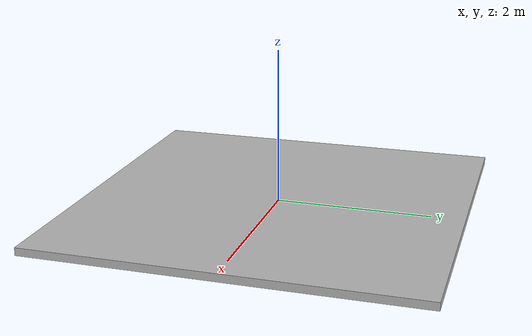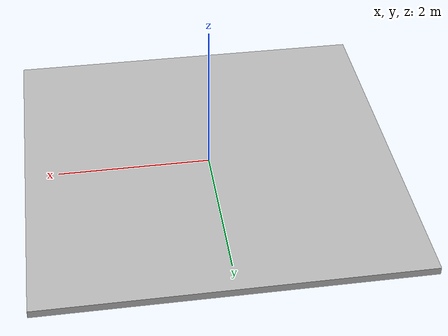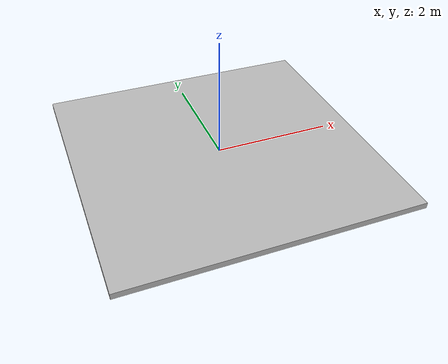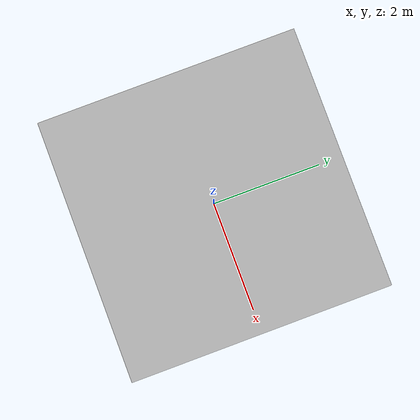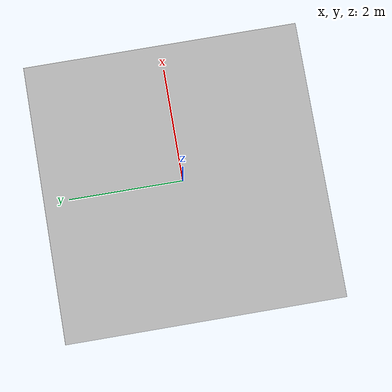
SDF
<?xml version="1.0" ?>
<sdf version="1.6">
	<model name="planeStage2">
		<link name="ridges">
			<self_collide>false</self_collide>
			<pose frame="">0 0 0 0 0 -1.57</pose>
			<inertial>
				<pose frame="">0.0 0.0 0.0 0 0 0</pose>
				<mass>10</mass>
				<inertia>
					<ixx>0.83</ixx>
					<ixy>-0.0</ixy>
					<ixz>-0.0</ixz>
					<iyy>0.83</iyy>
					<iyz>-0.0</iyz>
					<izz>0.83</izz>
				</inertia>
			</inertial>
			<collision name="stage">
				<geometry>
					<box>
						<size>4.8768 4.8768 0.1</size>
					</box>
				</geometry>
			      <surface>
        <friction>
          <ode>
            <mu>1</mu>
            <mu2>1</mu2>
          </ode>
        </friction>
      </surface>
			</collision>

			<visual name="stage">
				<geometry>
					<box>
						<size>4.8768 4.8768  0.1</size>
					</box>
				</geometry>
				<material>
					<script>
						<uri>model://planeStage2/materials/scripts/</uri>
						<uri>model://planeStage2/materials/textures/</uri>
						<name>planeStage2/Image</name>
					</script>
				</material>
			</visual>
		</link>
		<static>true</static>
	</model>
</sdf>
